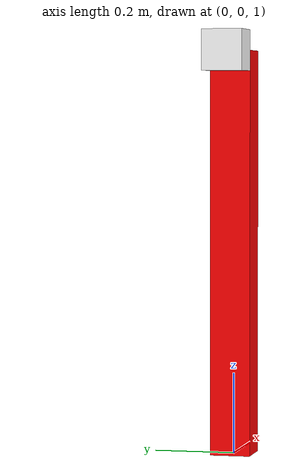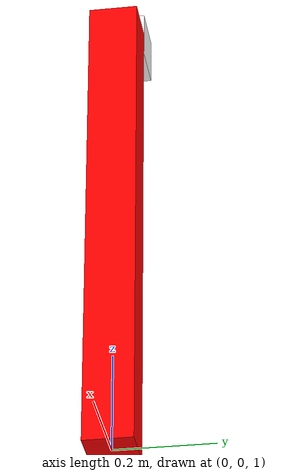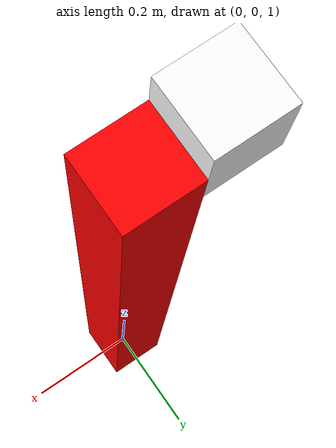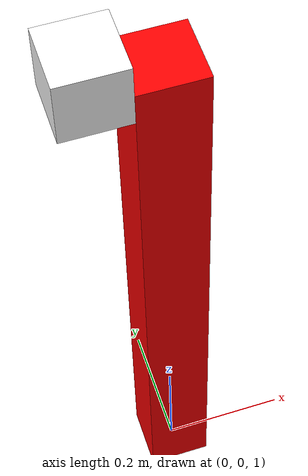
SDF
<?xml version='1.0'?>
<sdf version='1.4'>
    <model name="pendulum_gz">
        <pose>0 0 0 0 0 0</pose>
        <link name="link_00">
            <pose>0.0 0 1.5 0 0 0</pose>
            <collision name="collision_00">
                <geometry>
                    <box>
                        <size>.1 .1 1</size>
                    </box>
                </geometry>
            </collision>
            <visual name="visual_00">
                <geometry>
                    <box>
                        <size>.1 .1 1</size>
                    </box>
                </geometry>
                <material>
                    <ambient> 0 0 0 0 </ambient>
                    <diffuse> 1 0 0 1 </diffuse>
                    <specular> 0 0 0 0 </specular>
                    <emissive> 0.5 0 0 0.5 </emissive>
                </material>
            </visual>
        </link>

        <model name="base">
            <static> True </static>
            <pose>0 0 2.0 0 0 0</pose>
            <link name="link_01">
                <pose>-0.1 0 0.0 0 0 0</pose>
                <visual name="visual_01">
                    <geometry>
                        <box>
                            <size>.1 .1 .1</size>
                        </box>
                    </geometry>
                    <material>
                        <ambient> 0 0 0 0 </ambient>
                        <diffuse> 1 1 1 1 </diffuse>
                        <specular> 1 1 1 1 </specular>
                    </material>
                </visual>
            </link>
        </model>
        <joint name="joint_00" type="revolute">
            <parent>link_00</parent>
            <child>base::link_01</child>
            <pose>0.0 0.0 0.0 0.0 0.0 0.0</pose>
            <axis>
                <xyz>1.0 0.0 0.0</xyz>
            </axis>
        </joint>
    </model>
</sdf>
